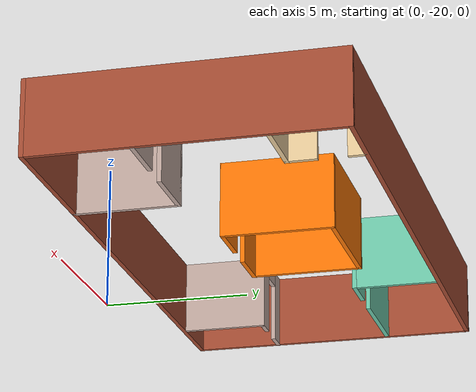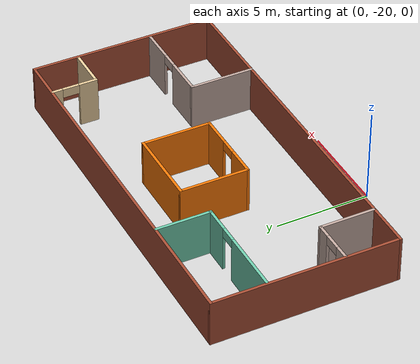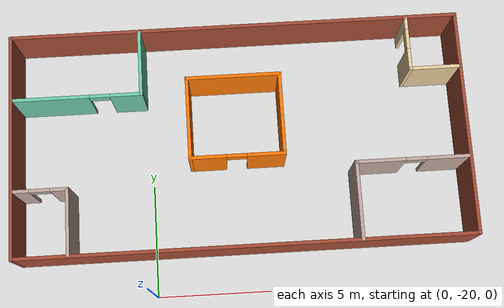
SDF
<?xml version='1.0'?>
<sdf version='1.6'>
  <model name='Building'>
    <pose frame=''>3.97583 -13.3078 0 0 -0 0</pose>
    <link name='Wall_11'>
      <pose frame=''>-8.70452 -2.03374 0 0 -0 0</pose>
      <visual name='Wall_11_Visual_0'>
        <pose frame=''>-0.846234 0 1.25 0 -0 0</pose>
        <geometry>
          <box>
            <size>0.807532 0.15 2.5</size>
          </box>
        </geometry>
        <material>
          <script>
            <uri>file://media/materials/scripts/gazebo.material</uri>
            <name>Gazebo/Grey</name>
          </script>
          <ambient>0.760784 0.662745 0.627451 1</ambient>
        </material>
        <meta>
          <layer>0</layer>
        </meta>
      </visual>
      <collision name='Wall_11_Collision_0'>
        <geometry>
          <box>
            <size>0.807532 0.15 2.5</size>
          </box>
        </geometry>
        <pose frame=''>-0.846234 0 1.25 0 -0 0</pose>
      </collision>
      <visual name='Wall_11_Visual_1'>
        <pose frame=''>0.853766 0 1.25 0 -0 0</pose>
        <geometry>
          <box>
            <size>0.792468 0.15 2.5</size>
          </box>
        </geometry>
        <material>
          <script>
            <uri>file://media/materials/scripts/gazebo.material</uri>
            <name>Gazebo/Grey</name>
          </script>
          <ambient>0.760784 0.662745 0.627451 1</ambient>
        </material>
        <meta>
          <layer>0</layer>
        </meta>
      </visual>
      <collision name='Wall_11_Collision_1'>
        <geometry>
          <box>
            <size>0.792468 0.15 2.5</size>
          </box>
        </geometry>
        <pose frame=''>0.853766 0 1.25 0 -0 0</pose>
      </collision>
      <visual name='Wall_11_Visual_2'>
        <pose frame=''>0.007532 0 2.25 0 -0 0</pose>
        <geometry>
          <box>
            <size>0.9 0.15 0.5</size>
          </box>
        </geometry>
        <material>
          <script>
            <uri>file://media/materials/scripts/gazebo.material</uri>
            <name>Gazebo/Grey</name>
          </script>
          <ambient>0.760784 0.662745 0.627451 1</ambient>
        </material>
        <meta>
          <layer>0</layer>
        </meta>
      </visual>
      <collision name='Wall_11_Collision_2'>
        <geometry>
          <box>
            <size>0.9 0.15 0.5</size>
          </box>
        </geometry>
        <pose frame=''>0.007532 0 2.25 0 -0 0</pose>
      </collision>
    </link>
    <link name='Wall_12'>
      <collision name='Wall_12_Collision'>
        <geometry>
          <box>
            <size>3 0.15 2.5</size>
          </box>
        </geometry>
        <pose frame=''>0 0 1.25 0 -0 0</pose>
      </collision>
      <visual name='Wall_12_Visual'>
        <pose frame=''>0 0 1.25 0 -0 0</pose>
        <geometry>
          <box>
            <size>3 0.15 2.5</size>
          </box>
        </geometry>
        <material>
          <script>
            <uri>file://media/materials/scripts/gazebo.material</uri>
            <name>Gazebo/Grey</name>
          </script>
          <ambient>0.760784 0.662745 0.627451 1</ambient>
        </material>
        <meta>
          <layer>0</layer>
        </meta>
      </visual>
      <pose frame=''>-7.52952 -3.45874 0 0 0 -1.5708</pose>
    </link>
    <link name='Wall_14'>
      <pose frame=''>7.72201 3.68178 0 0 0 -1.5708</pose>
      <visual name='Wall_14_Visual_0'>
        <pose frame=''>-0.959939 0 1.25 0 -0 0</pose>
        <geometry>
          <box>
            <size>0.580122 0.15 2.5</size>
          </box>
        </geometry>
        <material>
          <script>
            <uri>file://media/materials/scripts/gazebo.material</uri>
            <name>Gazebo/Grey</name>
          </script>
          <ambient>0.921569 0.807843 0.615686 1</ambient>
        </material>
        <meta>
          <layer>0</layer>
        </meta>
      </visual>
      <collision name='Wall_14_Collision_0'>
        <geometry>
          <box>
            <size>0.580122 0.15 2.5</size>
          </box>
        </geometry>
        <pose frame=''>-0.959939 0 1.25 0 -0 0</pose>
      </collision>
      <visual name='Wall_14_Visual_1'>
        <pose frame=''>0.740061 0 1.25 0 -0 0</pose>
        <geometry>
          <box>
            <size>1.01988 0.15 2.5</size>
          </box>
        </geometry>
        <material>
          <script>
            <uri>file://media/materials/scripts/gazebo.material</uri>
            <name>Gazebo/Grey</name>
          </script>
          <ambient>0.921569 0.807843 0.615686 1</ambient>
        </material>
        <meta>
          <layer>0</layer>
        </meta>
      </visual>
      <collision name='Wall_14_Collision_1'>
        <geometry>
          <box>
            <size>1.01988 0.15 2.5</size>
          </box>
        </geometry>
        <pose frame=''>0.740061 0 1.25 0 -0 0</pose>
      </collision>
      <visual name='Wall_14_Visual_2'>
        <pose frame=''>-0.219878 0 2.25 0 -0 0</pose>
        <geometry>
          <box>
            <size>0.9 0.15 0.5</size>
          </box>
        </geometry>
        <material>
          <script>
            <uri>file://media/materials/scripts/gazebo.material</uri>
            <name>Gazebo/Grey</name>
          </script>
          <ambient>0.921569 0.807843 0.615686 1</ambient>
        </material>
        <meta>
          <layer>0</layer>
        </meta>
      </visual>
      <collision name='Wall_14_Collision_2'>
        <geometry>
          <box>
            <size>0.9 0.15 0.5</size>
          </box>
        </geometry>
        <pose frame=''>-0.219878 0 2.25 0 -0 0</pose>
      </collision>
    </link>
    <link name='Wall_15'>
      <collision name='Wall_15_Collision'>
        <geometry>
          <box>
            <size>2.25 0.15 2.5</size>
          </box>
        </geometry>
        <pose frame=''>0 0 1.25 0 -0 0</pose>
      </collision>
      <visual name='Wall_15_Visual'>
        <pose frame=''>0 0 1.25 0 -0 0</pose>
        <geometry>
          <box>
            <size>2.25 0.15 2.5</size>
          </box>
        </geometry>
        <material>
          <script>
            <uri>file://media/materials/scripts/gazebo.material</uri>
            <name>Gazebo/Grey</name>
          </script>
          <ambient>0.921569 0.807843 0.615686 1</ambient>
        </material>
        <meta>
          <layer>0</layer>
        </meta>
      </visual>
      <pose frame=''>8.77201 2.50678 0 0 -0 0</pose>
    </link>
    <link name='Wall_17'>
      <collision name='Wall_17_Collision'>
        <geometry>
          <box>
            <size>3.75 0.15 2.5</size>
          </box>
        </geometry>
        <pose frame=''>0 0 1.25 0 -0 0</pose>
      </collision>
      <visual name='Wall_17_Visual'>
        <pose frame=''>0 0 1.25 0 -0 0</pose>
        <geometry>
          <box>
            <size>3.75 0.15 2.5</size>
          </box>
        </geometry>
        <material>
          <script>
            <uri>file://media/materials/scripts/gazebo.material</uri>
            <name>Gazebo/Grey</name>
          </script>
          <ambient>0.996078 0.47451 0.0196078 1</ambient>
        </material>
        <meta>
          <layer>0</layer>
        </meta>
      </visual>
      <pose frame=''>-2.19306 0.812342 0 0 -0 1.5708</pose>
    </link>
    <link name='Wall_18'>
      <collision name='Wall_18_Collision'>
        <geometry>
          <box>
            <size>4.25 0.15 2.5</size>
          </box>
        </geometry>
        <pose frame=''>0 0 1.25 0 -0 0</pose>
      </collision>
      <visual name='Wall_18_Visual'>
        <pose frame=''>0 0 1.25 0 -0 0</pose>
        <geometry>
          <box>
            <size>4.25 0.15 2.5</size>
          </box>
        </geometry>
        <material>
          <script>
            <uri>file://media/materials/scripts/gazebo.material</uri>
            <name>Gazebo/Grey</name>
          </script>
          <ambient>0.996078 0.47451 0.0196078 1</ambient>
        </material>
        <meta>
          <layer>0</layer>
        </meta>
      </visual>
      <pose frame=''>-0.143062 2.61234 0 0 -0 0</pose>
    </link>
    <link name='Wall_19'>
      <collision name='Wall_19_Collision'>
        <geometry>
          <box>
            <size>3.75 0.15 2.5</size>
          </box>
        </geometry>
        <pose frame=''>0 0 1.25 0 -0 0</pose>
      </collision>
      <visual name='Wall_19_Visual'>
        <pose frame=''>0 0 1.25 0 -0 0</pose>
        <geometry>
          <box>
            <size>3.75 0.15 2.5</size>
          </box>
        </geometry>
        <material>
          <script>
            <uri>file://media/materials/scripts/gazebo.material</uri>
            <name>Gazebo/Grey</name>
          </script>
          <ambient>0.996078 0.47451 0.0196078 1</ambient>
        </material>
        <meta>
          <layer>0</layer>
        </meta>
      </visual>
      <pose frame=''>1.90694 0.812342 0 0 0 -1.5708</pose>
    </link>
    <link name='Wall_20'>
      <pose frame=''>-0.143062 -0.987658 0 0 -0 3.14159</pose>
      <visual name='Wall_20_Visual_0'>
        <pose frame=''>-1.27447 0 1.25 0 -0 0</pose>
        <geometry>
          <box>
            <size>1.70105 0.15 2.5</size>
          </box>
        </geometry>
        <material>
          <script>
            <uri>file://media/materials/scripts/gazebo.material</uri>
            <name>Gazebo/Grey</name>
          </script>
          <ambient>0.996078 0.47451 0.0196078 1</ambient>
        </material>
        <meta>
          <layer>0</layer>
        </meta>
      </visual>
      <collision name='Wall_20_Collision_0'>
        <geometry>
          <box>
            <size>1.70105 0.15 2.5</size>
          </box>
        </geometry>
        <pose frame=''>-1.27447 0 1.25 0 -0 0</pose>
      </collision>
      <visual name='Wall_20_Visual_1'>
        <pose frame=''>1.30053 0 1.25 0 -0 0</pose>
        <geometry>
          <box>
            <size>1.64895 0.15 2.5</size>
          </box>
        </geometry>
        <material>
          <script>
            <uri>file://media/materials/scripts/gazebo.material</uri>
            <name>Gazebo/Grey</name>
          </script>
          <ambient>0.996078 0.47451 0.0196078 1</ambient>
        </material>
        <meta>
          <layer>0</layer>
        </meta>
      </visual>
      <collision name='Wall_20_Collision_1'>
        <geometry>
          <box>
            <size>1.64895 0.15 2.5</size>
          </box>
        </geometry>
        <pose frame=''>1.30053 0 1.25 0 -0 0</pose>
      </collision>
      <visual name='Wall_20_Visual_2'>
        <pose frame=''>0.026052 0 2.25 0 -0 0</pose>
        <geometry>
          <box>
            <size>0.9 0.15 0.5</size>
          </box>
        </geometry>
        <material>
          <script>
            <uri>file://media/materials/scripts/gazebo.material</uri>
            <name>Gazebo/Grey</name>
          </script>
          <ambient>0.996078 0.47451 0.0196078 1</ambient>
        </material>
        <meta>
          <layer>0</layer>
        </meta>
      </visual>
      <collision name='Wall_20_Collision_2'>
        <geometry>
          <box>
            <size>0.9 0.15 0.5</size>
          </box>
        </geometry>
        <pose frame=''>0.026052 0 2.25 0 -0 0</pose>
      </collision>
    </link>
    <link name='Wall_22'>
      <collision name='Wall_22_Collision'>
        <geometry>
          <box>
            <size>3.5 0.15 2.5</size>
          </box>
        </geometry>
        <pose frame=''>0 0 1.25 0 -0 0</pose>
      </collision>
      <visual name='Wall_22_Visual'>
        <pose frame=''>0 0 1.25 0 -0 0</pose>
        <geometry>
          <box>
            <size>3.5 0.15 2.5</size>
          </box>
        </geometry>
        <material>
          <script>
            <uri>file://media/materials/scripts/gazebo.material</uri>
            <name>Gazebo/Grey</name>
          </script>
          <ambient>0.760784 0.662745 0.627451 1</ambient>
        </material>
        <meta>
          <layer>0</layer>
        </meta>
      </visual>
      <pose frame=''>4.97035 -3.24685 0 0 -0 1.5708</pose>
    </link>
    <link name='Wall_23'>
      <pose frame=''>7.39535 -1.57185 0 0 -0 0</pose>
      <visual name='Wall_23_Visual_0'>
        <pose frame=''>-1.39126 0 1.25 0 -0 0</pose>
        <geometry>
          <box>
            <size>2.21747 0.15 2.5</size>
          </box>
        </geometry>
        <material>
          <script>
            <uri>file://media/materials/scripts/gazebo.material</uri>
            <name>Gazebo/Grey</name>
          </script>
          <ambient>0.760784 0.662745 0.627451 1</ambient>
        </material>
        <meta>
          <layer>0</layer>
        </meta>
      </visual>
      <collision name='Wall_23_Collision_0'>
        <geometry>
          <box>
            <size>2.21747 0.15 2.5</size>
          </box>
        </geometry>
        <pose frame=''>-1.39126 0 1.25 0 -0 0</pose>
      </collision>
      <visual name='Wall_23_Visual_1'>
        <pose frame=''>1.55874 0 1.25 0 -0 0</pose>
        <geometry>
          <box>
            <size>1.88253 0.15 2.5</size>
          </box>
        </geometry>
        <material>
          <script>
            <uri>file://media/materials/scripts/gazebo.material</uri>
            <name>Gazebo/Grey</name>
          </script>
          <ambient>0.760784 0.662745 0.627451 1</ambient>
        </material>
        <meta>
          <layer>0</layer>
        </meta>
      </visual>
      <collision name='Wall_23_Collision_1'>
        <geometry>
          <box>
            <size>1.88253 0.15 2.5</size>
          </box>
        </geometry>
        <pose frame=''>1.55874 0 1.25 0 -0 0</pose>
      </collision>
      <visual name='Wall_23_Visual_2'>
        <pose frame=''>0.167473 0 2.25 0 -0 0</pose>
        <geometry>
          <box>
            <size>0.9 0.15 0.5</size>
          </box>
        </geometry>
        <material>
          <script>
            <uri>file://media/materials/scripts/gazebo.material</uri>
            <name>Gazebo/Grey</name>
          </script>
          <ambient>0.760784 0.662745 0.627451 1</ambient>
        </material>
        <meta>
          <layer>0</layer>
        </meta>
      </visual>
      <collision name='Wall_23_Collision_2'>
        <geometry>
          <box>
            <size>0.9 0.15 0.5</size>
          </box>
        </geometry>
        <pose frame=''>0.167473 0 2.25 0 -0 0</pose>
      </collision>
    </link>
    <link name='Wall_25'>
      <collision name='Wall_25_Collision'>
        <geometry>
          <box>
            <size>3 0.15 2.5</size>
          </box>
        </geometry>
        <pose frame=''>0 0 1.25 0 -0 0</pose>
      </collision>
      <visual name='Wall_25_Visual'>
        <pose frame=''>0 0 1.25 0 -0 0</pose>
        <geometry>
          <box>
            <size>3 0.15 2.5</size>
          </box>
        </geometry>
        <material>
          <script>
            <uri>file://media/materials/scripts/gazebo.material</uri>
            <name>Gazebo/Grey</name>
          </script>
          <ambient>0.435294 0.796078 0.67451 1</ambient>
        </material>
        <meta>
          <layer>0</layer>
        </meta>
      </visual>
      <pose frame=''>-4.21701 3.45452 0 0 0 -1.5708</pose>
    </link>
    <link name='Wall_26'>
      <pose frame=''>-7.01701 2.02952 0 0 -0 3.14159</pose>
      <visual name='Wall_26_Visual_0'>
        <pose frame=''>-2.15286 0 1.25 0 -0 0</pose>
        <geometry>
          <box>
            <size>1.44428 0.15 2.5</size>
          </box>
        </geometry>
        <material>
          <script>
            <uri>file://media/materials/scripts/gazebo.material</uri>
            <name>Gazebo/Grey</name>
          </script>
          <ambient>0.435294 0.796078 0.67451 1</ambient>
        </material>
        <meta>
          <layer>0</layer>
        </meta>
      </visual>
      <collision name='Wall_26_Collision_0'>
        <geometry>
          <box>
            <size>1.44428 0.15 2.5</size>
          </box>
        </geometry>
        <pose frame=''>-2.15286 0 1.25 0 -0 0</pose>
      </collision>
      <visual name='Wall_26_Visual_1'>
        <pose frame=''>1.17214 0 1.25 0 -0 0</pose>
        <geometry>
          <box>
            <size>3.40572 0.15 2.5</size>
          </box>
        </geometry>
        <material>
          <script>
            <uri>file://media/materials/scripts/gazebo.material</uri>
            <name>Gazebo/Grey</name>
          </script>
          <ambient>0.435294 0.796078 0.67451 1</ambient>
        </material>
        <meta>
          <layer>0</layer>
        </meta>
      </visual>
      <collision name='Wall_26_Collision_1'>
        <geometry>
          <box>
            <size>3.40572 0.15 2.5</size>
          </box>
        </geometry>
        <pose frame=''>1.17214 0 1.25 0 -0 0</pose>
      </collision>
      <visual name='Wall_26_Visual_2'>
        <pose frame=''>-0.980721 0 2.25 0 -0 0</pose>
        <geometry>
          <box>
            <size>0.9 0.15 0.5</size>
          </box>
        </geometry>
        <material>
          <script>
            <uri>file://media/materials/scripts/gazebo.material</uri>
            <name>Gazebo/Grey</name>
          </script>
          <ambient>0.435294 0.796078 0.67451 1</ambient>
        </material>
        <meta>
          <layer>0</layer>
        </meta>
      </visual>
      <collision name='Wall_26_Collision_2'>
        <geometry>
          <box>
            <size>0.9 0.15 0.5</size>
          </box>
        </geometry>
        <pose frame=''>-0.980721 0 2.25 0 -0 0</pose>
      </collision>
    </link>
    <link name='Wall_5'>
      <collision name='Wall_5_Collision'>
        <geometry>
          <box>
            <size>20 0.15 2.5</size>
          </box>
        </geometry>
        <pose frame=''>0 0 1.25 0 -0 0</pose>
      </collision>
      <visual name='Wall_5_Visual'>
        <pose frame=''>0 0 1.25 0 -0 0</pose>
        <geometry>
          <box>
            <size>20 0.15 2.5</size>
          </box>
        </geometry>
        <material>
          <script>
            <uri>file://media/materials/scripts/gazebo.material</uri>
            <name>Gazebo/Bricks</name>
          </script>
          <ambient>1 1 1 1</ambient>
        </material>
        <meta>
          <layer>0</layer>
        </meta>
      </visual>
      <pose frame=''>0 4.925 0 0 -0 0</pose>
    </link>
    <link name='Wall_6'>
      <collision name='Wall_6_Collision'>
        <geometry>
          <box>
            <size>10 0.15 2.5</size>
          </box>
        </geometry>
        <pose frame=''>0 0 1.25 0 -0 0</pose>
      </collision>
      <visual name='Wall_6_Visual'>
        <pose frame=''>0 0 1.25 0 -0 0</pose>
        <geometry>
          <box>
            <size>10 0.15 2.5</size>
          </box>
        </geometry>
        <material>
          <script>
            <uri>file://media/materials/scripts/gazebo.material</uri>
            <name>Gazebo/Bricks</name>
          </script>
          <ambient>1 1 1 1</ambient>
        </material>
        <meta>
          <layer>0</layer>
        </meta>
      </visual>
      <pose frame=''>9.925 0 0 0 0 -1.5708</pose>
    </link>
    <link name='Wall_7'>
      <collision name='Wall_7_Collision'>
        <geometry>
          <box>
            <size>20 0.15 2.5</size>
          </box>
        </geometry>
        <pose frame=''>0 0 1.25 0 -0 0</pose>
      </collision>
      <visual name='Wall_7_Visual'>
        <pose frame=''>0 0 1.25 0 -0 0</pose>
        <geometry>
          <box>
            <size>20 0.15 2.5</size>
          </box>
        </geometry>
        <material>
          <script>
            <uri>file://media/materials/scripts/gazebo.material</uri>
            <name>Gazebo/Bricks</name>
          </script>
          <ambient>1 1 1 1</ambient>
        </material>
        <meta>
          <layer>0</layer>
        </meta>
      </visual>
      <pose frame=''>0 -4.925 0 0 -0 3.14159</pose>
    </link>
    <link name='Wall_8'>
      <collision name='Wall_8_Collision'>
        <geometry>
          <box>
            <size>10 0.15 2.5</size>
          </box>
        </geometry>
        <pose frame=''>0 0 1.25 0 -0 0</pose>
      </collision>
      <visual name='Wall_8_Visual'>
        <pose frame=''>0 0 1.25 0 -0 0</pose>
        <geometry>
          <box>
            <size>10 0.15 2.5</size>
          </box>
        </geometry>
        <material>
          <script>
            <uri>file://media/materials/scripts/gazebo.material</uri>
            <name>Gazebo/Bricks</name>
          </script>
          <ambient>1 1 1 1</ambient>
        </material>
        <meta>
          <layer>0</layer>
        </meta>
      </visual>
      <pose frame=''>-9.925 0 0 0 -0 1.5708</pose>
    </link>
    <static>1</static>
  </model>
</sdf>
